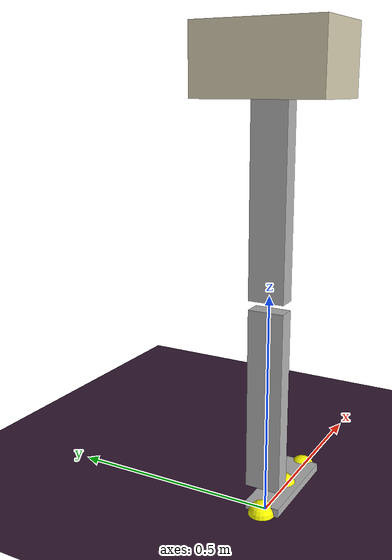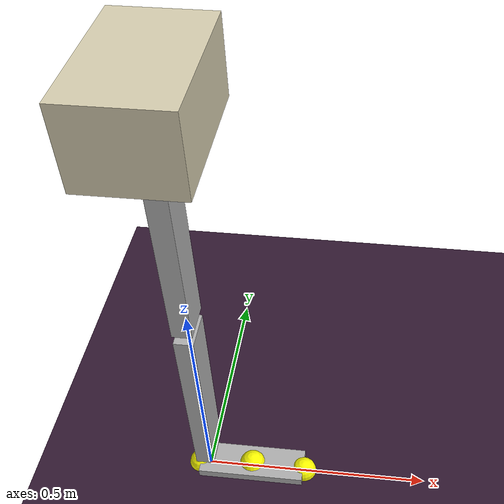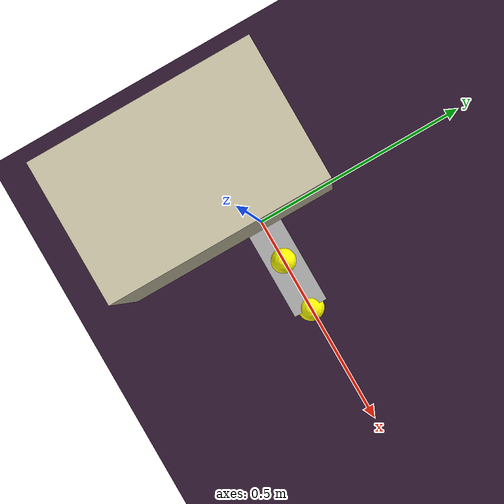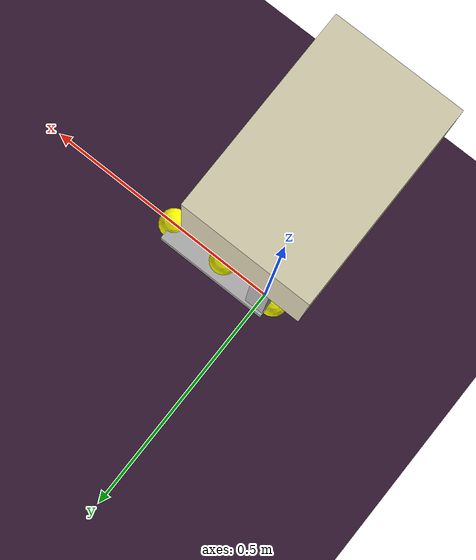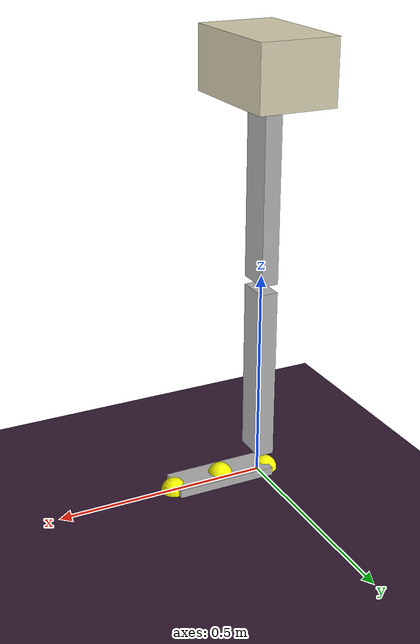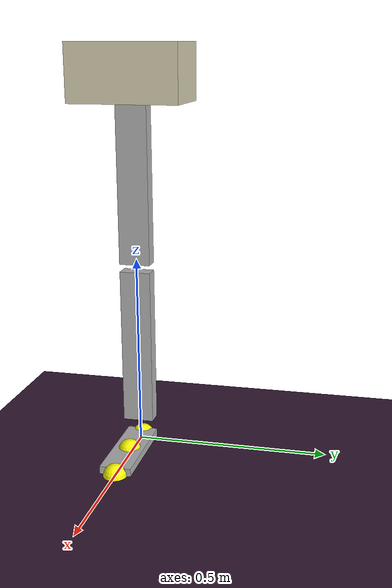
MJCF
<mujoco model="yuuki_robot_monoped_hopper">
  <!--
    ROBOT: 片脚モノポッド（1 本脚 + freejoint）。両脚歩行用モデルではない。
    DOF: 膝 + 足首の 2 関節（実験名の「2joint」= 脚 2 本ではない）。
    TASK: exp_008 ホッピング（立脚→飛翔→着地）。
  -->
  <!--
    以下のオプションは、親子の(bodyの)geomが接触しないようにXMLを変更したためコメントアウトした。
    有効にすると、親子の(bodyの)geomが接触するようになる。
  -->

  <default>
    <site size="0.03" rgba="1 1 0 1"/>
  </default>

  <visual>
    <!-- analyze_rollout / オフスクリーン描画用（既定 640 より広いバッファ） -->
    <global offwidth="1280" offheight="960"/>
  </visual>

  <asset>
    <texture type="skybox" builtin="gradient" rgb1="1 1 1" rgb2=".6 .8 1" width="256" height="256"/>
    <texture name="grid" type="2d" builtin="checker" width="512" height="512" rgb1=".3 .1 .1" rgb2=".1 .1 .3" />
    <material name="floor_mat" texture="grid" texrepeat="40 40"/>
    <material name="basket" rgba="0.85 0.82 0.7 1"/>
    <material name="servo" rgba="0.65 0.1 0.18 1"/>
    <material name="metal" rgba="0.7 0.7 0.7 1"/>
  </asset>

  <worldbody>
    <!-- basket_thigh を追従（+X 前進しても画角内に収める） -->
    <camera name="track_robot" mode="track" target="basket_thigh" pos="0 -2.4 1.15" fovy="48"/>
    <light pos="0 0 10" dir="0 0 -1" diffuse="0.8 0.8 0.8"/>
    <geom name="floor" type="plane" size="25 25 0.1" material="floor_mat"/>

    <!-- 基準はカゴの底中央としている。 -->
    <body name="basket_thigh" pos="0 0 0.9">
      <freejoint name="root"/>

      <site name="imu_site" pos="0 0 0.05"/>

      <geom name="basket" type="box" pos="0 0 0.0725" size="0.09 0.14 0.0725" material="basket" mass="0.22"/>

      <!--
        【大腿リンク】
        docs/human_anthropometry.mdを参考に170cm / 70kgの男性の例の下限値を採用した。
        大腿の長さは 41 cm
        大腿の質量は 9.9 kg
      -->
      <geom name="thigh_link" type="box" pos="0 0 -0.205" size="0.02 0.04 0.205" material="metal" mass="9.9"/>

      <body name="shank" pos="0 0 -0.43">
        <!--
          膝関節は人間と同様に、真下を0°として、後ろに100°まで曲げられるようにする。
          人間と同様、前には曲げられないようにする。
        -->
        <joint name="knee" type="hinge" axis="0 1 0" range="0 100"/>

        <!--
          【下腿リンク】
          docs/human_anthropometry.mdを参考に170cm / 70kgの男性の例の下限値を採用した。
          下腿の長さは 41 cm
          下腿の質量は 3.0 kg
        -->
        <geom name="shank_link" type="box" pos="0 0 -0.205" size="0.02 0.04 0.205" material="metal" mass="3.0"/>

        <body name="foot" pos="0 0 -0.46">
          <!--
            踵関節は人間と同様に、真横を0°として、つま先を上に持ち上げる方向に20°まで、
            地面を蹴る方向に90°まで曲げられるようにする。
          -->
          <joint name="ankle" type="hinge" axis="0 1 0" range="-20 90"/>

          <!-- foot_site: 足底板 geom 中心（foot_z 用） -->
          <site name="foot_site" pos="0.1 0 0"/>
          <!-- foot_plate pos=0.1 size x=0.12 z=0.01 → 底面 z=-0.01、X 端は -0.02 / 0.22 -->
          <site name="heel_bottom_site" pos="-0.02 0 -0.01"/>
          <site name="toe_bottom_site" pos="0.22 0 -0.01"/>

          <!--
            【足底板】
            docs/human_anthropometry.mdを参考に170cm / 70kgの男性の例の下限値を採用した。
            足底板の長さは 24 cm
            足底板の幅は 8 cm
            足底板の質量は 1.0 kg
          -->
          <geom name="foot_plate" type="box" pos="0.1 0 0" size="0.12 0.04 0.01" material="metal" mass="1.0" friction="1.15 0.005 0.0001"/>
        </body>
      </body>

      <!-- 1 Leg -->
    </body>
  </worldbody>

  <actuator>
    <position
      name="knee_servo"
      joint="knee"
      kp="300"
      kv="1"
      ctrlrange="0 1.745"
      forcerange="-168 70"
      forcelimited="true"
    />

    <position
      name="ankle_servo"
      joint="ankle"
      kp="300"
      kv="1"
      ctrlrange="-0.349 1.571"
      forcerange="-21 98"
      forcelimited="true"
    />
  </actuator>

  <sensor>
    <gyro name="imu_gyro" site="imu_site"/>

    <framezaxis name="imu_zaxis" objtype="site" objname="imu_site"/>

    <framexaxis name="foot_xaxis" objtype="site" objname="foot_site"/>
    <framezaxis name="foot_zaxis" objtype="site" objname="foot_site"/>

    <framepos name="toe_pos" objtype="site" objname="toe_bottom_site"/>

  </sensor>
</mujoco>
